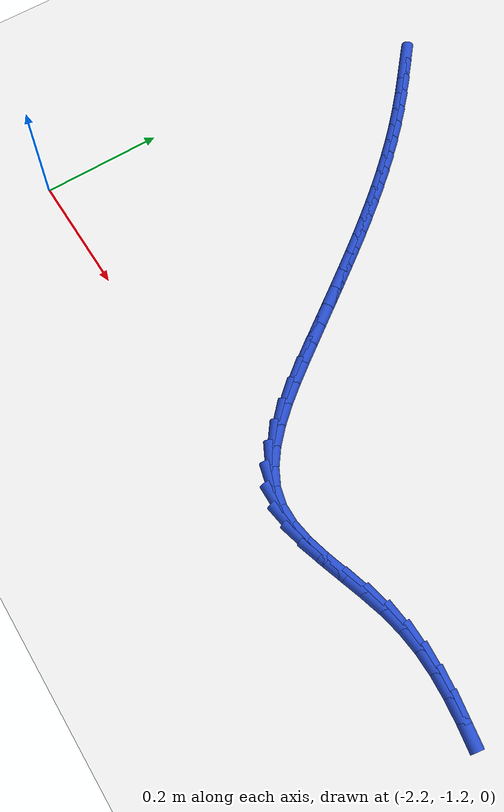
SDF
<sdf version="1.6">
 <world name="default">
  <model name="ground_plane">
   <static>1</static>
   <link name="link">
    <collision name="collision">
     <geometry><plane><normal>0 0 1</normal><size>100 100</size></plane></geometry>
     <surface><friction><ode><mu>100</mu><mu2>50</mu2></ode></friction></surface>
    </collision>
    <visual name="visual">
     <cast_shadows>0</cast_shadows>
     <geometry><plane><normal>0 0 1</normal><size>100 100</size></plane></geometry>
     <material>
      <script><uri>file://media/materials/scripts/gazebo.material</uri><name>Gazebo/WhiteGlow</name></script>
     </material>
    </visual>
   </link>
  </model>
  <model name="line">
   <link name="link_129">
    <pose>-2.096945063758293 -0.554633670616307 0.01 0 1.57 -0.7307450977056135</pose>
    <collision name="collision">
     <geometry><cylinder><radius>0.01</radius><length>0.08</length></cylinder></geometry>
    </collision>
    <visual name="visual">
     <material>
      <script><name>Gazebo/Blue</name><uri>file://media/materials/scripts/gazebo.material</uri></script>
     </material>
     <geometry><cylinder><radius>0.01</radius><length>0.08</length></cylinder></geometry>
    </visual>
   </link>
   <link name="link_130">
    <pose>-2.0704245288553773 -0.578402971976062 0.01 0 1.57 -0.7383975300271305</pose>
    <collision name="collision">
     <geometry><cylinder><radius>0.01</radius><length>0.08</length></cylinder></geometry>
    </collision>
    <visual name="visual">
     <material>
      <script><name>Gazebo/Blue</name><uri>file://media/materials/scripts/gazebo.material</uri></script>
     </material>
     <geometry><cylinder><radius>0.01</radius><length>0.08</length></cylinder></geometry>
    </visual>
   </link>
   <link name="link_131">
    <pose>-2.0443697538355328 -0.6021168641455753 0.01 0 1.57 -0.7640220504656181</pose>
    <collision name="collision">
     <geometry><cylinder><radius>0.01</radius><length>0.08</length></cylinder></geometry>
    </collision>
    <visual name="visual">
     <material>
      <script><name>Gazebo/Blue</name><uri>file://media/materials/scripts/gazebo.material</uri></script>
     </material>
     <geometry><cylinder><radius>0.01</radius><length>0.08</length></cylinder></geometry>
    </visual>
   </link>
   <link name="link_132">
    <pose>-2.0195269203173107 -0.6259196842658673 0.01 0 1.57 -0.7907819433668685</pose>
    <collision name="collision">
     <geometry><cylinder><radius>0.01</radius><length>0.08</length></cylinder></geometry>
    </collision>
    <visual name="visual">
     <material>
      <script><name>Gazebo/Blue</name><uri>file://media/materials/scripts/gazebo.material</uri></script>
     </material>
     <geometry><cylinder><radius>0.01</radius><length>0.08</length></cylinder></geometry>
    </visual>
   </link>
   <link name="link_133">
    <pose>-1.9958441230932529 -0.6498588702463608 0.01 0 1.57 -0.8167512069462434</pose>
    <collision name="collision">
     <geometry><cylinder><radius>0.01</radius><length>0.08</length></cylinder></geometry>
    </collision>
    <visual name="visual">
     <material>
      <script><name>Gazebo/Blue</name><uri>file://media/materials/scripts/gazebo.material</uri></script>
     </material>
     <geometry><cylinder><radius>0.01</radius><length>0.08</length></cylinder></geometry>
    </visual>
   </link>
   <link name="link_134">
    <pose>-1.9731965829425706 -0.6739730120420113 0.01 0 1.57 -0.8415777635592586</pose>
    <collision name="collision">
     <geometry><cylinder><radius>0.01</radius><length>0.08</length></cylinder></geometry>
    </collision>
    <visual name="visual">
     <material>
      <script><name>Gazebo/Blue</name><uri>file://media/materials/scripts/gazebo.material</uri></script>
     </material>
     <geometry><cylinder><radius>0.01</radius><length>0.08</length></cylinder></geometry>
    </visual>
   </link>
   <link name="link_135">
    <pose>-1.9514595206444787 -0.6983006996077775 0.01 0 1.57 -0.8649218443685806</pose>
    <collision name="collision">
     <geometry><cylinder><radius>0.01</radius><length>0.08</length></cylinder></geometry>
    </collision>
    <visual name="visual">
     <material>
      <script><name>Gazebo/Blue</name><uri>file://media/materials/scripts/gazebo.material</uri></script>
     </material>
     <geometry><cylinder><radius>0.01</radius><length>0.08</length></cylinder></geometry>
    </visual>
   </link>
   <link name="link_136">
    <pose>-1.9305081569781892 -0.7228805228986142 0.01 0 1.57 -0.886469857292196</pose>
    <collision name="collision">
     <geometry><cylinder><radius>0.01</radius><length>0.08</length></cylinder></geometry>
    </collision>
    <visual name="visual">
     <material>
      <script><name>Gazebo/Blue</name><uri>file://media/materials/scripts/gazebo.material</uri></script>
     </material>
     <geometry><cylinder><radius>0.01</radius><length>0.08</length></cylinder></geometry>
    </visual>
   </link>
   <link name="link_137">
    <pose>-1.9102177127229154 -0.7477510718694788 0.01 0 1.57 -0.9059466449006642</pose>
    <collision name="collision">
     <geometry><cylinder><radius>0.01</radius><length>0.08</length></cylinder></geometry>
    </collision>
    <visual name="visual">
     <material>
      <script><name>Gazebo/Blue</name><uri>file://media/materials/scripts/gazebo.material</uri></script>
     </material>
     <geometry><cylinder><radius>0.01</radius><length>0.08</length></cylinder></geometry>
    </visual>
   </link>
   <link name="link_138">
    <pose>-1.8904634086578702 -0.7729509364753286 0.01 0 1.57 -0.9231251724909345</pose>
    <collision name="collision">
     <geometry><cylinder><radius>0.01</radius><length>0.08</length></cylinder></geometry>
    </collision>
    <visual name="visual">
     <material>
      <script><name>Gazebo/Blue</name><uri>file://media/materials/scripts/gazebo.material</uri></script>
     </material>
     <geometry><cylinder><radius>0.01</radius><length>0.08</length></cylinder></geometry>
    </visual>
   </link>
   <link name="link_139">
    <pose>-1.8711204655622653 -0.7985187066711207 0.01 0 1.57 -0.9378330562582499</pose>
    <collision name="collision">
     <geometry><cylinder><radius>0.01</radius><length>0.08</length></cylinder></geometry>
    </collision>
    <visual name="visual">
     <material>
      <script><name>Gazebo/Blue</name><uri>file://media/materials/scripts/gazebo.material</uri></script>
     </material>
     <geometry><cylinder><radius>0.01</radius><length>0.08</length></cylinder></geometry>
    </visual>
   </link>
   <link name="link_140">
    <pose>-1.8520641042153159 -0.8244929724118109 0.01 0 1.57 -0.9499557504989999</pose>
    <collision name="collision">
     <geometry><cylinder><radius>0.01</radius><length>0.08</length></cylinder></geometry>
    </collision>
    <visual name="visual">
     <material>
      <script><name>Gazebo/Blue</name><uri>file://media/materials/scripts/gazebo.material</uri></script>
     </material>
     <geometry><cylinder><radius>0.01</radius><length>0.08</length></cylinder></geometry>
    </visual>
   </link>
   <link name="link_141">
    <pose>-1.833169545396234 -0.8509123236523564 0.01 0 1.57 -0.9594365786306766</pose>
    <collision name="collision">
     <geometry><cylinder><radius>0.01</radius><length>0.08</length></cylinder></geometry>
    </collision>
    <visual name="visual">
     <material>
      <script><name>Gazebo/Blue</name><uri>file://media/materials/scripts/gazebo.material</uri></script>
     </material>
     <geometry><cylinder><radius>0.01</radius><length>0.08</length></cylinder></geometry>
    </visual>
   </link>
   <link name="link_142">
    <pose>-1.8143120098842314 -0.877815350347714 0.01 0 1.57 -0.966274059752153</pose>
    <collision name="collision">
     <geometry><cylinder><radius>0.01</radius><length>0.08</length></cylinder></geometry>
    </collision>
    <visual name="visual">
     <material>
      <script><name>Gazebo/Blue</name><uri>file://media/materials/scripts/gazebo.material</uri></script>
     </material>
     <geometry><cylinder><radius>0.01</radius><length>0.08</length></cylinder></geometry>
    </visual>
   </link>
   <link name="link_143">
    <pose>-1.7953667184585222 -0.9052406424528413 0.01 0 1.57 -0.970517130100195</pose>
    <collision name="collision">
     <geometry><cylinder><radius>0.01</radius><length>0.08</length></cylinder></geometry>
    </collision>
    <visual name="visual">
     <material>
      <script><name>Gazebo/Blue</name><uri>file://media/materials/scripts/gazebo.material</uri></script>
     </material>
     <geometry><cylinder><radius>0.01</radius><length>0.08</length></cylinder></geometry>
    </visual>
   </link>
   <link name="link_144">
    <pose>-1.7762088918983199 -0.9332267899226939 0.01 0 1.57 -0.9722588974503481</pose>
    <collision name="collision">
     <geometry><cylinder><radius>0.01</radius><length>0.08</length></cylinder></geometry>
    </collision>
    <visual name="visual">
     <material>
      <script><name>Gazebo/Blue</name><uri>file://media/materials/scripts/gazebo.material</uri></script>
     </material>
     <geometry><cylinder><radius>0.01</radius><length>0.08</length></cylinder></geometry>
    </visual>
   </link>
   <link name="link_145">
    <pose>-1.7567137509828363 -0.961812382712229 0.01 0 1.57 -0.9716295250878654</pose>
    <collision name="collision">
     <geometry><cylinder><radius>0.01</radius><length>0.08</length></cylinder></geometry>
    </collision>
    <visual name="visual">
     <material>
      <script><name>Gazebo/Blue</name><uri>file://media/materials/scripts/gazebo.material</uri></script>
     </material>
     <geometry><cylinder><radius>0.01</radius><length>0.08</length></cylinder></geometry>
    </visual>
   </link>
   <link name="link_146">
    <pose>-1.7367565164912846 -0.9910360107764036 0.01 0 1.57 -0.9685954637166906</pose>
    <collision name="collision">
     <geometry><cylinder><radius>0.01</radius><length>0.08</length></cylinder></geometry>
    </collision>
    <visual name="visual">
     <material>
      <script><name>Gazebo/Blue</name><uri>file://media/materials/scripts/gazebo.material</uri></script>
     </material>
     <geometry><cylinder><radius>0.01</radius><length>0.08</length></cylinder></geometry>
    </visual>
   </link>
   <link name="link_147">
    <pose>-1.7162123359337234 -1.0209239916621449 0.01 0 1.57 -0.9557949436191251</pose>
    <collision name="collision">
     <geometry><cylinder><radius>0.01</radius><length>0.08</length></cylinder></geometry>
    </collision>
    <visual name="visual">
     <material>
      <script><name>Gazebo/Blue</name><uri>file://media/materials/scripts/gazebo.material</uri></script>
     </material>
     <geometry><cylinder><radius>0.01</radius><length>0.08</length></cylinder></geometry>
    </visual>
   </link>
   <link name="link_148">
    <pose>-1.6949534699252349 -1.051019094917015 0.01 0 1.57 -0.9230314320180629</pose>
    <collision name="collision">
     <geometry><cylinder><radius>0.01</radius><length>0.08</length></cylinder></geometry>
    </collision>
    <visual name="visual">
     <material>
      <script><name>Gazebo/Blue</name><uri>file://media/materials/scripts/gazebo.material</uri></script>
     </material>
     <geometry><cylinder><radius>0.01</radius><length>0.08</length></cylinder></geometry>
    </visual>
   </link>
   <link name="link_149">
    <pose>-1.6728484064429034 -1.080232182252929 0.01 0 1.57 -0.867079614980619</pose>
    <collision name="collision">
     <geometry><cylinder><radius>0.01</radius><length>0.08</length></cylinder></geometry>
    </collision>
    <visual name="visual">
     <material>
      <script><name>Gazebo/Blue</name><uri>file://media/materials/scripts/gazebo.material</uri></script>
     </material>
     <geometry><cylinder><radius>0.01</radius><length>0.08</length></cylinder></geometry>
    </visual>
   </link>
   <link name="link_150">
    <pose>-1.6497653790601037 -1.1074315033690607 0.01 0 1.57 -0.782518108870369</pose>
    <collision name="collision">
     <geometry><cylinder><radius>0.01</radius><length>0.08</length></cylinder></geometry>
    </collision>
    <visual name="visual">
     <material>
      <script><name>Gazebo/Blue</name><uri>file://media/materials/scripts/gazebo.material</uri></script>
     </material>
     <geometry><cylinder><radius>0.01</radius><length>0.08</length></cylinder></geometry>
    </visual>
   </link>
   <link name="link_151">
    <pose>-1.6255726213502073 -1.131485307964581 0.01 0 1.57 -0.6609044942821867</pose>
    <collision name="collision">
     <geometry><cylinder><radius>0.01</radius><length>0.08</length></cylinder></geometry>
    </collision>
    <visual name="visual">
     <material>
      <script><name>Gazebo/Blue</name><uri>file://media/materials/scripts/gazebo.material</uri></script>
     </material>
     <geometry><cylinder><radius>0.01</radius><length>0.08</length></cylinder></geometry>
    </visual>
   </link>
   <link name="link_152">
    <pose>-1.6001383668865885 -1.1512618457386636 0.01 0 1.57 -0.4919932245346917</pose>
    <collision name="collision">
     <geometry><cylinder><radius>0.01</radius><length>0.08</length></cylinder></geometry>
    </collision>
    <visual name="visual">
     <material>
      <script><name>Gazebo/Blue</name><uri>file://media/materials/scripts/gazebo.material</uri></script>
     </material>
     <geometry><cylinder><radius>0.01</radius><length>0.08</length></cylinder></geometry>
    </visual>
   </link>
   <link name="link_153">
    <pose>-1.5733308492426212 -1.165629366390479 0.01 0 1.57 -0.2699572770903552</pose>
    <collision name="collision">
     <geometry><cylinder><radius>0.01</radius><length>0.08</length></cylinder></geometry>
    </collision>
    <visual name="visual">
     <material>
      <script><name>Gazebo/Blue</name><uri>file://media/materials/scripts/gazebo.material</uri></script>
     </material>
     <geometry><cylinder><radius>0.01</radius><length>0.08</length></cylinder></geometry>
    </visual>
   </link>
   <link name="link_154">
    <pose>-1.5450192565685916 -1.1734635278185384 0.01 0 1.57 -0.035044449865825805</pose>
    <collision name="collision">
     <geometry><cylinder><radius>0.01</radius><length>0.08</length></cylinder></geometry>
    </collision>
    <visual name="visual">
     <material>
      <script><name>Gazebo/Blue</name><uri>file://media/materials/scripts/gazebo.material</uri></script>
     </material>
     <geometry><cylinder><radius>0.01</radius><length>0.08</length></cylinder></geometry>
    </visual>
   </link>
   <link name="link_155">
    <pose>-1.515184815620885 -1.1745094876094349 0.01 0 1.57 0.13784357512275028</pose>
    <collision name="collision">
     <geometry><cylinder><radius>0.01</radius><length>0.08</length></cylinder></geometry>
    </collision>
    <visual name="visual">
     <material>
      <script><name>Gazebo/Blue</name><uri>file://media/materials/scripts/gazebo.material</uri></script>
     </material>
     <geometry><cylinder><radius>0.01</radius><length>0.08</length></cylinder></geometry>
    </visual>
   </link>
   <link name="link_156">
    <pose>-1.484024509493409 -1.170186826789226 0.01 0 1.57 0.24542007058288715</pose>
    <collision name="collision">
     <geometry><cylinder><radius>0.01</radius><length>0.08</length></cylinder></geometry>
    </collision>
    <visual name="visual">
     <material>
      <script><name>Gazebo/Blue</name><uri>file://media/materials/scripts/gazebo.material</uri></script>
     </material>
     <geometry><cylinder><radius>0.01</radius><length>0.08</length></cylinder></geometry>
    </visual>
   </link>
   <link name="link_157">
    <pose>-1.4517598555230244 -1.1621055296506155 0.01 0 1.57 0.29934541258403075</pose>
    <collision name="collision">
     <geometry><cylinder><radius>0.01</radius><length>0.08</length></cylinder></geometry>
    </collision>
    <visual name="visual">
     <material>
      <script><name>Gazebo/Blue</name><uri>file://media/materials/scripts/gazebo.material</uri></script>
     </material>
     <geometry><cylinder><radius>0.01</radius><length>0.08</length></cylinder></geometry>
    </visual>
   </link>
   <link name="link_158">
    <pose>-1.4186123710465892 -1.1518755804863072 0.01 0 1.57 0.3083555106686553</pose>
    <collision name="collision">
     <geometry><cylinder><radius>0.01</radius><length>0.08</length></cylinder></geometry>
    </collision>
    <visual name="visual">
     <material>
      <script><name>Gazebo/Blue</name><uri>file://media/materials/scripts/gazebo.material</uri></script>
     </material>
     <geometry><cylinder><radius>0.01</radius><length>0.08</length></cylinder></geometry>
    </visual>
   </link>
   <link name="link_159">
    <pose>-1.3848035734009616 -1.1411069635890043 0.01 0 1.57 0.27592219546514846</pose>
    <collision name="collision">
     <geometry><cylinder><radius>0.01</radius><length>0.08</length></cylinder></geometry>
    </collision>
    <visual name="visual">
     <material>
      <script><name>Gazebo/Blue</name><uri>file://media/materials/scripts/gazebo.material</uri></script>
     </material>
     <geometry><cylinder><radius>0.01</radius><length>0.08</length></cylinder></geometry>
    </visual>
   </link>
   <link name="link_160">
    <pose>-1.3505549799229992 -1.131409663251411 0.01 0 1.57 0.20084023555210656</pose>
    <collision name="collision">
     <geometry><cylinder><radius>0.01</radius><length>0.08</length></cylinder></geometry>
    </collision>
    <visual name="visual">
     <material>
      <script><name>Gazebo/Blue</name><uri>file://media/materials/scripts/gazebo.material</uri></script>
     </material>
     <geometry><cylinder><radius>0.01</radius><length>0.08</length></cylinder></geometry>
    </visual>
   </link>
   <link name="link_161">
    <pose>-1.3160880369075307 -1.1243927124945055 0.01 0 1.57 0.09460223066238925</pose>
    <collision name="collision">
     <geometry><cylinder><radius>0.01</radius><length>0.08</length></cylinder></geometry>
    </collision>
    <visual name="visual">
     <material>
      <script><name>Gazebo/Blue</name><uri>file://media/materials/scripts/gazebo.material</uri></script>
     </material>
     <geometry><cylinder><radius>0.01</radius><length>0.08</length></cylinder></geometry>
    </visual>
   </link>
   <link name="link_162">
    <pose>-1.2815833832583703 -1.1211187225114265 0.01 0 1.57 -0.0020545564129330588</pose>
    <collision name="collision">
     <geometry><cylinder><radius>0.01</radius><length>0.08</length></cylinder></geometry>
    </collision>
    <visual name="visual">
     <material>
      <script><name>Gazebo/Blue</name><uri>file://media/materials/scripts/gazebo.material</uri></script>
     </material>
     <geometry><cylinder><radius>0.01</radius><length>0.08</length></cylinder></geometry>
    </visual>
   </link>
   <link name="link_163">
    <pose>-1.247112566721089 -1.121189544848254 0.01 0 1.57 -0.08056139721360273</pose>
    <collision name="collision">
     <geometry><cylinder><radius>0.01</radius><length>0.08</length></cylinder></geometry>
    </collision>
    <visual name="visual">
     <material>
      <script><name>Gazebo/Blue</name><uri>file://media/materials/scripts/gazebo.material</uri></script>
     </material>
     <geometry><cylinder><radius>0.01</radius><length>0.08</length></cylinder></geometry>
    </visual>
   </link>
   <link name="link_164">
    <pose>-1.212729099705786 -1.1239655331084029 0.01 0 1.57 -0.1404574099600204</pose>
    <collision name="collision">
     <geometry><cylinder><radius>0.01</radius><length>0.08</length></cylinder></geometry>
    </collision>
    <visual name="visual">
     <material>
      <script><name>Gazebo/Blue</name><uri>file://media/materials/scripts/gazebo.material</uri></script>
     </material>
     <geometry><cylinder><radius>0.01</radius><length>0.08</length></cylinder></geometry>
    </visual>
   </link>
   <link name="link_165">
    <pose>-1.1784864946225588 -1.1288070408952868 0.01 0 1.57 -0.1820358893381116</pose>
    <collision name="collision">
     <geometry><cylinder><radius>0.01</radius><length>0.08</length></cylinder></geometry>
    </collision>
    <visual name="visual">
     <material>
      <script><name>Gazebo/Blue</name><uri>file://media/materials/scripts/gazebo.material</uri></script>
     </material>
     <geometry><cylinder><radius>0.01</radius><length>0.08</length></cylinder></geometry>
    </visual>
   </link>
  </model>
 </world>
</sdf>
